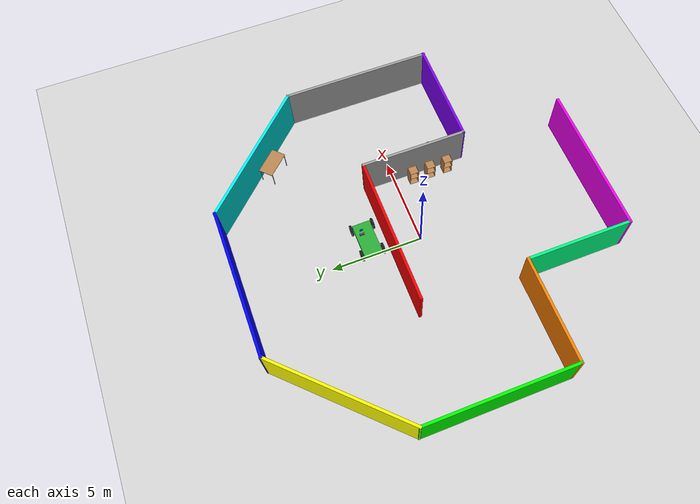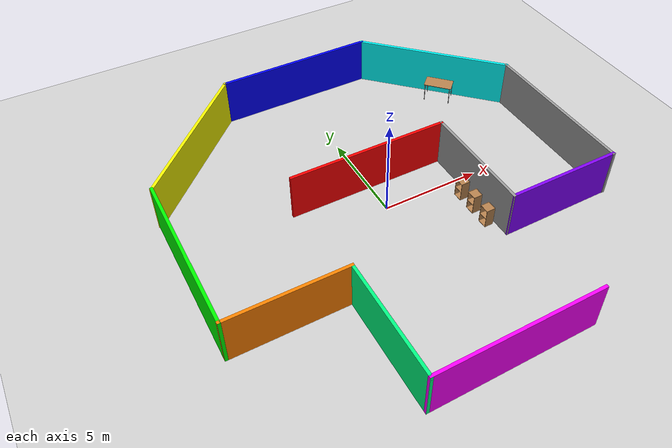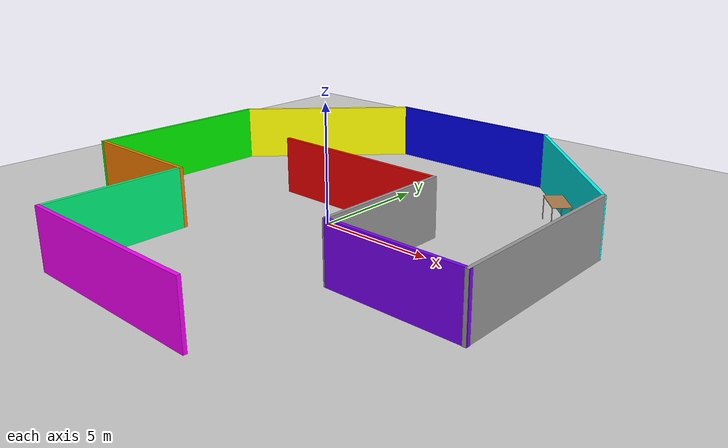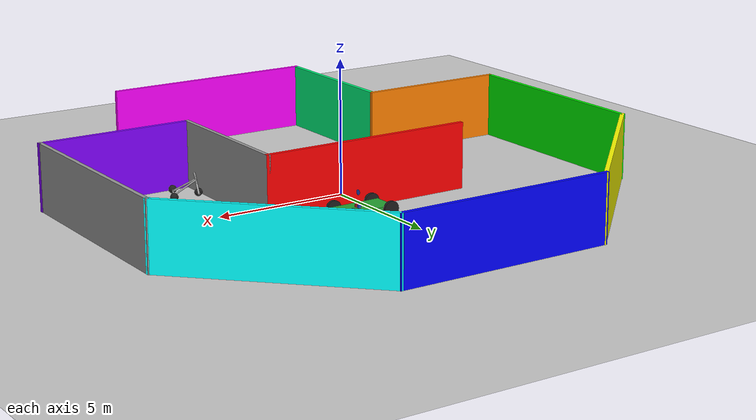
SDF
<sdf version="1.6">
 <world name="default">
  <model name="ground_plane">
   <static>1</static>
   <link name="link">
    <collision name="collision">
     <geometry><plane><normal>0 0 1</normal><size>100 100</size></plane></geometry>
     <surface><friction><ode><mu>100</mu><mu2>50</mu2></ode></friction></surface>
    </collision>
    <visual name="visual">
     <cast_shadows>0</cast_shadows>
     <geometry><plane><normal>0 0 1</normal><size>100 100</size></plane></geometry>
     <material>
      <script><uri>file://media/materials/scripts/gazebo.material</uri><name>Gazebo/Grey</name></script>
     </material>
    </visual>
   </link>
  </model>
  <model name="localize_room">
   <link name="Wall_15">
    <collision name="Wall_15_Collision">
     <geometry><box><size>8.284 0.15 2.5</size></box></geometry>
     <pose>0 0 1.25 0 -0 0</pose>
    </collision>
    <visual name="Wall_15_Visual">
     <pose>0 0 1.25 0 -0 0</pose>
     <geometry><box><size>8.284 0.15 2.5</size></box></geometry>
     <material>
      <script><uri>file://media/materials/scripts/gazebo.material</uri><name>Gazebo/Grey</name></script>
      <ambient>0.0 0.0 0.0 1</ambient>
     </material>
     <meta><layer>0</layer></meta>
    </visual>
    <pose>9.775 -0.015533 0 0 -0 1.5708</pose>
   </link>
   <link name="Wall_21">
    <collision name="Wall_21_Collision">
     <geometry><box><size>8.25 0.15 2.5</size></box></geometry>
     <pose>0 0 1.25 0 -0 0</pose>
    </collision>
    <visual name="Wall_21_Visual">
     <pose>0 0 1.25 0 -0 0</pose>
     <geometry><box><size>8.25 0.15 2.5</size></box></geometry>
     <material>
      <script><uri>file://media/materials/scripts/gazebo.material</uri><name>Gazebo/Grey</name></script>
      <ambient>0.0 1.0 0.0 1</ambient>
     </material>
     <meta><layer>0</layer></meta>
    </visual>
    <pose>-9.775 0.001467 0 0 -0 1.5708</pose>
   </link>
   <link name="Wall_27">
    <collision name="Wall_27_Collision">
     <geometry><box><size>8.284 0.15 2.5</size></box></geometry>
     <pose>0 0 1.25 0 -0 0</pose>
    </collision>
    <visual name="Wall_27_Visual">
     <pose>0 0 1.25 0 -0 0</pose>
     <geometry><box><size>8.284 0.15 2.5</size></box></geometry>
     <material>
      <script><uri>file://media/materials/scripts/gazebo.material</uri><name>Gazebo/Grey</name></script>
      <ambient>0.0 0.0 1.0 1</ambient>
     </material>
     <meta><layer>0</layer></meta>
    </visual>
    <pose>0 9.75947 0 0 -0 0</pose>
   </link>
   <link name="Wall_33">
    <collision name="Wall_33_Collision">
     <geometry><box><size>8.22233 0.15 2.5</size></box></geometry>
     <pose>0 0 1.25 0 -0 0</pose>
    </collision>
    <visual name="Wall_33_Visual">
     <pose>0 0 1.25 0 -0 0</pose>
     <geometry><box><size>8.22233 0.15 2.5</size></box></geometry>
     <material>
      <script><uri>file://media/materials/scripts/gazebo.material</uri><name>Gazebo/Grey</name></script>
      <ambient>1.0 1.0 0.0 1</ambient>
     </material>
     <meta><layer>0</layer></meta>
    </visual>
    <pose>-6.921 6.90547 0 0 0 -2.35619</pose>
   </link>
   <link name="Wall_35">
    <collision name="Wall_35_Collision">
     <geometry><box><size>8.22233 0.15 2.5</size></box></geometry>
     <pose>0 0 1.25 0 -0 0</pose>
    </collision>
    <visual name="Wall_35_Visual">
     <pose>0 0 1.25 0 -0 0</pose>
     <geometry><box><size>8.22233 0.15 2.5</size></box></geometry>
     <material>
      <script><uri>file://media/materials/scripts/gazebo.material</uri><name>Gazebo/Grey</name></script>
      <ambient>0.0 1.0 1.0 1</ambient>
     </material>
     <meta><layer>0</layer></meta>
    </visual>
    <pose>6.921 6.90547 0 0 0 -0.785398</pose>
   </link>
   <link name="Wall_4">
    <collision name="Wall_4_Collision">
     <geometry><box><size>8.284 0.15 2.5</size></box></geometry>
     <pose>0 0 1.25 0 -0 0</pose>
    </collision>
    <visual name="Wall_4_Visual">
     <pose>0 0 1.25 0 -0 0</pose>
     <geometry><box><size>8.284 0.15 2.5</size></box></geometry>
     <material>
      <script><uri>file://media/materials/scripts/gazebo.material</uri><name>Gazebo/Grey</name></script>
      <ambient>1.0 0.0 1.0 1</ambient>
     </material>
     <meta><layer>0</layer></meta>
    </visual>
    <pose>0 -9.79053 0 0 -0 0</pose>
   </link>
   <link name="Wall_56">
    <collision name="Wall_56_Collision">
     <geometry><box><size>5.858 0.15 2.5</size></box></geometry>
     <pose>0 0 1.25 0 -0 0</pose>
    </collision>
    <visual name="Wall_56_Visual">
     <pose>0 0 1.25 0 -0 0</pose>
     <geometry><box><size>5.858 0.15 2.5</size></box></geometry>
     <material>
      <script><uri>file://media/materials/scripts/gazebo.material</uri><name>Gazebo/Grey</name></script>
      <ambient>1.0 0.50196 0.0 1</ambient>
     </material>
     <meta><layer>0</layer></meta>
    </visual>
    <pose>-6.921 -4.04853 0 0 -0 0</pose>
   </link>
   <link name="Wall_58">
    <collision name="Wall_58_Collision">
     <geometry><box><size>5.75 0.15 2.5</size></box></geometry>
     <pose>0 0 1.25 0 -0 0</pose>
    </collision>
    <visual name="Wall_58_Visual">
     <pose>0 0 1.25 0 -0 0</pose>
     <geometry><box><size>5.75 0.15 2.5</size></box></geometry>
     <material>
      <script><uri>file://media/materials/scripts/gazebo.material</uri><name>Gazebo/Grey</name></script>
      <ambient>0.0 1.0 0.50196 1</ambient>
     </material>
     <meta><layer>0</layer></meta>
    </visual>
    <pose>-4.067 -6.99053 0 0 -0 1.5708</pose>
   </link>
   <link name="Wall_60">
    <collision name="Wall_60_Collision">
     <geometry><box><size>5.90863 0.15 2.5</size></box></geometry>
     <pose>0 0 1.25 0 -0 0</pose>
    </collision>
    <visual name="Wall_60_Visual">
     <pose>0 0 1.25 0 -0 0</pose>
     <geometry><box><size>5.90863 0.15 2.5</size></box></geometry>
     <material>
      <script><uri>file://media/materials/scripts/gazebo.material</uri><name>Gazebo/Grey</name></script>
      <ambient>0.50196 0.0 1.0 1</ambient>
     </material>
     <meta><layer>0</layer></meta>
    </visual>
    <pose>6.91525 -4.06048 0 0 0 -0.000864</pose>
   </link>
   <link name="Wall_63">
    <collision name="Wall_63_Collision">
     <geometry><box><size>8.25 0.15 2.5</size></box></geometry>
     <pose>0 0 1.25 0 -0 0</pose>
    </collision>
    <visual name="Wall_63_Visual">
     <pose>0 0 1.25 0 -0 0</pose>
     <geometry><box><size>8.25 0.15 2.5</size></box></geometry>
     <material>
      <script><uri>file://media/materials/scripts/gazebo.material</uri><name>Gazebo/Grey</name></script>
      <ambient>1.0 0.0 0.0 1</ambient>
     </material>
     <meta><layer>0</layer></meta>
    </visual>
    <pose>-0.014065 1.69201 0 0 -0 0</pose>
   </link>
   <link name="Wall_64">
    <collision name="Wall_64_Collision">
     <geometry><box><size>5.9 0.15 2.5</size></box></geometry>
     <pose>0 0 1.25 0 -0 0</pose>
    </collision>
    <visual name="Wall_64_Visual">
     <pose>0 0 1.25 0 -0 0</pose>
     <geometry><box><size>5.9 0.15 2.5</size></box></geometry>
     <material>
      <script><uri>file://media/materials/scripts/gazebo.material</uri><name>Gazebo/Grey</name></script>
      <ambient>1.0 1.0 1.0 1</ambient>
     </material>
     <meta><layer>0</layer></meta>
    </visual>
    <pose>4.03594 -1.18299 0 0 0 -1.5708</pose>
   </link>
   <static>1</static>
  </model>
  <model name="cabinet">
   <static>1</static>
   <link name="cabinet_bottom_plate">
    <inertial>
     <pose>0 0 -1 0 -0 0</pose>
     <inertia><ixx>2.05</ixx><ixy>0</ixy><ixz>0</ixz><iyy>2.05</iyy><iyz>0</iyz><izz>2.05</izz></inertia>
     <mass>25</mass>
    </inertial>
    <collision name="cabinet_bottom_plate_geom">
     <pose>0 0 0.01 0 -0 0</pose>
     <geometry><box><size>0.45 0.45 0.02</size></box></geometry>
    </collision>
    <visual name="cabinet_bottom_plate_geom_visual">
     <pose>0 0 0.01 0 -0 0</pose>
     <geometry><box><size>0.45 0.45 0.02</size></box></geometry>
     <material>
      <script><uri>file://media/materials/scripts/gazebo.material</uri><name>Gazebo/Wood</name></script>
     </material>
    </visual>
    <collision name="cabinet_bottom_plate_geom_cabinet_back_plate">
     <pose>0.235 0 0.51 0 -0 0</pose>
     <geometry><box><size>0.02 0.45 1.02</size></box></geometry>
    </collision>
    <visual name="cabinet_bottom_plate_geom_cabinet_back_plate_visual">
     <pose>0.235 0 0.51 0 -0 0</pose>
     <geometry><box><size>0.02 0.45 1.02</size></box></geometry>
     <material>
      <script><uri>file://media/materials/scripts/gazebo.material</uri><name>Gazebo/Wood</name></script>
     </material>
    </visual>
    <collision name="cabinet_bottom_plate_geom_cabinet_left_plate">
     <pose>0 0.235 0.51 0 -0 0</pose>
     <geometry><box><size>0.45 0.02 1.02</size></box></geometry>
    </collision>
    <visual name="cabinet_bottom_plate_geom_cabinet_left_plate_visual">
     <pose>0 0.235 0.51 0 -0 0</pose>
     <geometry><box><size>0.45 0.02 1.02</size></box></geometry>
     <material>
      <script><uri>file://media/materials/scripts/gazebo.material</uri><name>Gazebo/Wood</name></script>
     </material>
    </visual>
    <collision name="cabinet_bottom_plate_geom_cabinet_middle_plate">
     <pose>0 0 0.51 0 -0 0</pose>
     <geometry><box><size>0.45 0.45 0.02</size></box></geometry>
    </collision>
    <visual name="cabinet_bottom_plate_geom_cabinet_middle_plate_visual">
     <pose>0 0 0.51 0 -0 0</pose>
     <geometry><box><size>0.45 0.45 0.02</size></box></geometry>
     <material>
      <script><uri>file://media/materials/scripts/gazebo.material</uri><name>Gazebo/Wood</name></script>
     </material>
    </visual>
    <collision name="cabinet_bottom_plate_geom_cabinet_right_plate">
     <pose>0 -0.235 0.51 0 -0 0</pose>
     <geometry><box><size>0.45 0.02 1.02</size></box></geometry>
    </collision>
    <visual name="cabinet_bottom_plate_geom_cabinet_right_plate_visual">
     <pose>0 -0.235 0.51 0 -0 0</pose>
     <geometry><box><size>0.45 0.02 1.02</size></box></geometry>
     <material>
      <script><uri>file://media/materials/scripts/gazebo.material</uri><name>Gazebo/Wood</name></script>
     </material>
    </visual>
    <collision name="cabinet_bottom_plate_geom_cabinet_top_plate">
     <pose>0 0 1.01 0 -0 0</pose>
     <geometry><box><size>0.45 0.45 0.02</size></box></geometry>
    </collision>
    <visual name="cabinet_bottom_plate_geom_cabinet_top_plate_visual">
     <pose>0 0 1.01 0 -0 0</pose>
     <geometry><box><size>0.45 0.45 0.02</size></box></geometry>
     <material>
      <script><uri>file://media/materials/scripts/gazebo.material</uri><name>Gazebo/Wood</name></script>
     </material>
    </visual>
   </link>
   <pose>3.6 -3 0 0 -0 0</pose>
  </model>
  <model name="cabinet_0">
   <static>1</static>
   <link name="cabinet_bottom_plate">
    <inertial>
     <pose>0 0 -1 0 -0 0</pose>
     <inertia><ixx>2.05</ixx><ixy>0</ixy><ixz>0</ixz><iyy>2.05</iyy><iyz>0</iyz><izz>2.05</izz></inertia>
     <mass>25</mass>
    </inertial>
    <collision name="cabinet_bottom_plate_geom">
     <pose>0 0 0.01 0 -0 0</pose>
     <geometry><box><size>0.45 0.45 0.02</size></box></geometry>
    </collision>
    <visual name="cabinet_bottom_plate_geom_visual">
     <pose>0 0 0.01 0 -0 0</pose>
     <geometry><box><size>0.45 0.45 0.02</size></box></geometry>
     <material>
      <script><uri>file://media/materials/scripts/gazebo.material</uri><name>Gazebo/Wood</name></script>
     </material>
    </visual>
    <collision name="cabinet_bottom_plate_geom_cabinet_back_plate">
     <pose>0.235 0 0.51 0 -0 0</pose>
     <geometry><box><size>0.02 0.45 1.02</size></box></geometry>
    </collision>
    <visual name="cabinet_bottom_plate_geom_cabinet_back_plate_visual">
     <pose>0.235 0 0.51 0 -0 0</pose>
     <geometry><box><size>0.02 0.45 1.02</size></box></geometry>
     <material>
      <script><uri>file://media/materials/scripts/gazebo.material</uri><name>Gazebo/Wood</name></script>
     </material>
    </visual>
    <collision name="cabinet_bottom_plate_geom_cabinet_left_plate">
     <pose>0 0.235 0.51 0 -0 0</pose>
     <geometry><box><size>0.45 0.02 1.02</size></box></geometry>
    </collision>
    <visual name="cabinet_bottom_plate_geom_cabinet_left_plate_visual">
     <pose>0 0.235 0.51 0 -0 0</pose>
     <geometry><box><size>0.45 0.02 1.02</size></box></geometry>
     <material>
      <script><uri>file://media/materials/scripts/gazebo.material</uri><name>Gazebo/Wood</name></script>
     </material>
    </visual>
    <collision name="cabinet_bottom_plate_geom_cabinet_middle_plate">
     <pose>0 0 0.51 0 -0 0</pose>
     <geometry><box><size>0.45 0.45 0.02</size></box></geometry>
    </collision>
    <visual name="cabinet_bottom_plate_geom_cabinet_middle_plate_visual">
     <pose>0 0 0.51 0 -0 0</pose>
     <geometry><box><size>0.45 0.45 0.02</size></box></geometry>
     <material>
      <script><uri>file://media/materials/scripts/gazebo.material</uri><name>Gazebo/Wood</name></script>
     </material>
    </visual>
    <collision name="cabinet_bottom_plate_geom_cabinet_right_plate">
     <pose>0 -0.235 0.51 0 -0 0</pose>
     <geometry><box><size>0.45 0.02 1.02</size></box></geometry>
    </collision>
    <visual name="cabinet_bottom_plate_geom_cabinet_right_plate_visual">
     <pose>0 -0.235 0.51 0 -0 0</pose>
     <geometry><box><size>0.45 0.02 1.02</size></box></geometry>
     <material>
      <script><uri>file://media/materials/scripts/gazebo.material</uri><name>Gazebo/Wood</name></script>
     </material>
    </visual>
    <collision name="cabinet_bottom_plate_geom_cabinet_top_plate">
     <pose>0 0 1.01 0 -0 0</pose>
     <geometry><box><size>0.45 0.45 0.02</size></box></geometry>
    </collision>
    <visual name="cabinet_bottom_plate_geom_cabinet_top_plate_visual">
     <pose>0 0 1.01 0 -0 0</pose>
     <geometry><box><size>0.45 0.45 0.02</size></box></geometry>
     <material>
      <script><uri>file://media/materials/scripts/gazebo.material</uri><name>Gazebo/Wood</name></script>
     </material>
    </visual>
   </link>
   <pose>3.6 -2 0 0 -0 0</pose>
  </model>
  <model name="cabinet_1">
   <static>1</static>
   <link name="cabinet_bottom_plate">
    <inertial>
     <pose>0 0 -1 0 -0 0</pose>
     <inertia><ixx>2.05</ixx><ixy>0</ixy><ixz>0</ixz><iyy>2.05</iyy><iyz>0</iyz><izz>2.05</izz></inertia>
     <mass>25</mass>
    </inertial>
    <collision name="cabinet_bottom_plate_geom">
     <pose>0 0 0.01 0 -0 0</pose>
     <geometry><box><size>0.45 0.45 0.02</size></box></geometry>
    </collision>
    <visual name="cabinet_bottom_plate_geom_visual">
     <pose>0 0 0.01 0 -0 0</pose>
     <geometry><box><size>0.45 0.45 0.02</size></box></geometry>
     <material>
      <script><uri>file://media/materials/scripts/gazebo.material</uri><name>Gazebo/Wood</name></script>
     </material>
    </visual>
    <collision name="cabinet_bottom_plate_geom_cabinet_back_plate">
     <pose>0.235 0 0.51 0 -0 0</pose>
     <geometry><box><size>0.02 0.45 1.02</size></box></geometry>
    </collision>
    <visual name="cabinet_bottom_plate_geom_cabinet_back_plate_visual">
     <pose>0.235 0 0.51 0 -0 0</pose>
     <geometry><box><size>0.02 0.45 1.02</size></box></geometry>
     <material>
      <script><uri>file://media/materials/scripts/gazebo.material</uri><name>Gazebo/Wood</name></script>
     </material>
    </visual>
    <collision name="cabinet_bottom_plate_geom_cabinet_left_plate">
     <pose>0 0.235 0.51 0 -0 0</pose>
     <geometry><box><size>0.45 0.02 1.02</size></box></geometry>
    </collision>
    <visual name="cabinet_bottom_plate_geom_cabinet_left_plate_visual">
     <pose>0 0.235 0.51 0 -0 0</pose>
     <geometry><box><size>0.45 0.02 1.02</size></box></geometry>
     <material>
      <script><uri>file://media/materials/scripts/gazebo.material</uri><name>Gazebo/Wood</name></script>
     </material>
    </visual>
    <collision name="cabinet_bottom_plate_geom_cabinet_middle_plate">
     <pose>0 0 0.51 0 -0 0</pose>
     <geometry><box><size>0.45 0.45 0.02</size></box></geometry>
    </collision>
    <visual name="cabinet_bottom_plate_geom_cabinet_middle_plate_visual">
     <pose>0 0 0.51 0 -0 0</pose>
     <geometry><box><size>0.45 0.45 0.02</size></box></geometry>
     <material>
      <script><uri>file://media/materials/scripts/gazebo.material</uri><name>Gazebo/Wood</name></script>
     </material>
    </visual>
    <collision name="cabinet_bottom_plate_geom_cabinet_right_plate">
     <pose>0 -0.235 0.51 0 -0 0</pose>
     <geometry><box><size>0.45 0.02 1.02</size></box></geometry>
    </collision>
    <visual name="cabinet_bottom_plate_geom_cabinet_right_plate_visual">
     <pose>0 -0.235 0.51 0 -0 0</pose>
     <geometry><box><size>0.45 0.02 1.02</size></box></geometry>
     <material>
      <script><uri>file://media/materials/scripts/gazebo.material</uri><name>Gazebo/Wood</name></script>
     </material>
    </visual>
    <collision name="cabinet_bottom_plate_geom_cabinet_top_plate">
     <pose>0 0 1.01 0 -0 0</pose>
     <geometry><box><size>0.45 0.45 0.02</size></box></geometry>
    </collision>
    <visual name="cabinet_bottom_plate_geom_cabinet_top_plate_visual">
     <pose>0 0 1.01 0 -0 0</pose>
     <geometry><box><size>0.45 0.45 0.02</size></box></geometry>
     <material>
      <script><uri>file://media/materials/scripts/gazebo.material</uri><name>Gazebo/Wood</name></script>
     </material>
    </visual>
   </link>
   <pose>3.6 -1 0 0 -0 0</pose>
  </model>
  <model name="table">
   <static>1</static>
   <link name="link">
    <collision name="surface">
     <pose>0 0 1 0 -0 0</pose>
     <geometry><box><size>1.5 0.8 0.03</size></box></geometry>
     <surface><friction><ode><mu>0.6</mu><mu2>0.6</mu2></ode></friction></surface>
    </collision>
    <visual name="visual1">
     <pose>0 0 1 0 -0 0</pose>
     <geometry><box><size>1.5 0.8 0.03</size></box></geometry>
     <material>
      <script><uri>file://media/materials/scripts/gazebo.material</uri><name>Gazebo/Wood</name></script>
     </material>
    </visual>
    <collision name="front_left_leg">
     <pose>0.68 0.38 0.5 0 -0 0</pose>
     <geometry><cylinder><radius>0.02</radius><length>1</length></cylinder></geometry>
    </collision>
    <visual name="front_left_leg">
     <pose>0.68 0.38 0.5 0 -0 0</pose>
     <geometry><cylinder><radius>0.02</radius><length>1</length></cylinder></geometry>
     <material>
      <script><uri>file://media/materials/scripts/gazebo.material</uri><name>Gazebo/Grey</name></script>
     </material>
    </visual>
    <collision name="front_right_leg">
     <pose>0.68 -0.38 0.5 0 -0 0</pose>
     <geometry><cylinder><radius>0.02</radius><length>1</length></cylinder></geometry>
    </collision>
    <visual name="front_right_leg">
     <pose>0.68 -0.38 0.5 0 -0 0</pose>
     <geometry><cylinder><radius>0.02</radius><length>1</length></cylinder></geometry>
     <material>
      <script><uri>file://media/materials/scripts/gazebo.material</uri><name>Gazebo/Grey</name></script>
     </material>
    </visual>
    <collision name="back_right_leg">
     <pose>-0.68 -0.38 0.5 0 -0 0</pose>
     <geometry><cylinder><radius>0.02</radius><length>1</length></cylinder></geometry>
    </collision>
    <visual name="back_right_leg">
     <pose>-0.68 -0.38 0.5 0 -0 0</pose>
     <geometry><cylinder><radius>0.02</radius><length>1</length></cylinder></geometry>
     <material>
      <script><uri>file://media/materials/scripts/gazebo.material</uri><name>Gazebo/Grey</name></script>
     </material>
    </visual>
    <collision name="back_left_leg">
     <pose>-0.68 0.38 0.5 0 -0 0</pose>
     <geometry><cylinder><radius>0.02</radius><length>1</length></cylinder></geometry>
    </collision>
    <visual name="back_left_leg">
     <pose>-0.68 0.38 0.5 0 -0 0</pose>
     <geometry><cylinder><radius>0.02</radius><length>1</length></cylinder></geometry>
     <material>
      <script><uri>file://media/materials/scripts/gazebo.material</uri><name>Gazebo/Grey</name></script>
     </material>
    </visual>
   </link>
   <pose>6.91018 6.07308 0 0 0 -0.801836</pose>
  </model>
  <model name="trisphere_cycle">
   <link name="frame">
    <pose>-0.408559 0 0.385023 0 -0.522021 0</pose>
    <inertial>
     <mass>10</mass>
     <inertia><ixx>0.228</ixx><iyy>0.743521</iyy><izz>0.965521</izz><ixy>0</ixy><ixz>0</ixz><iyz>0</iyz></inertia>
    </inertial>
    <collision name="axle_collision">
     <pose>-0.471335 0 0 1.5708 -0 0</pose>
     <geometry><cylinder><length>1.03923</length><radius>0.03</radius></cylinder></geometry>
    </collision>
    <visual name="axle_visual">
     <pose>-0.471335 0 0 1.5708 -0 0</pose>
     <geometry><cylinder><length>1.03923</length><radius>0.03</radius></cylinder></geometry>
     <material>
      <script><uri>file://media/materials/scripts/gazebo.material</uri><name>Gazebo/Grey</name></script>
     </material>
    </visual>
    <collision name="frame_left_collision">
     <pose>0 0.171552 0 2.986 1.57079 2.76675</pose>
     <geometry><cylinder><length>1.00317</length><radius>0.03</radius></cylinder></geometry>
    </collision>
    <visual name="frame_left_visual">
     <pose>0 0.171552 0 2.986 1.57079 2.76675</pose>
     <geometry><cylinder><length>1.00317</length><radius>0.03</radius></cylinder></geometry>
     <material>
      <script><uri>file://media/materials/scripts/gazebo.material</uri><name>Gazebo/Grey</name></script>
     </material>
    </visual>
    <collision name="frame_right_collision">
     <pose>0 -0.171552 0 -2.986 1.57079 -2.76675</pose>
     <geometry><cylinder><length>1.00317</length><radius>0.03</radius></cylinder></geometry>
    </collision>
    <visual name="frame_right_visual">
     <pose>0 -0.171552 0 -2.986 1.57079 -2.76675</pose>
     <geometry><cylinder><length>1.00317</length><radius>0.03</radius></cylinder></geometry>
     <material>
      <script><uri>file://media/materials/scripts/gazebo.material</uri><name>Gazebo/Grey</name></script>
     </material>
    </visual>
   </link>
   <link name="fork">
    <pose>0.041441 0 0.385023 0 -0.174533 0</pose>
    <inertial>
     <mass>3</mass>
     <inertia>
      <ixx>0.158203</ixx>
      <iyy>0.0583594</iyy>
      <izz>0.102656</izz>
      <ixy>0</ixy>
      <ixz>0</ixz>
      <iyz>0</iyz>
     </inertia>
    </inertial>
    <collision name="handlebars_collision">
     <pose>0 0 0.397748 1.5708 -0 0</pose>
     <geometry><cylinder><length>0.636396</length><radius>0.0375</radius></cylinder></geometry>
    </collision>
    <visual name="handlebars_visual">
     <pose>0 0 0.397748 1.5708 -0 0</pose>
     <geometry><cylinder><length>0.636396</length><radius>0.0375</radius></cylinder></geometry>
     <material>
      <script><uri>file://media/materials/scripts/gazebo.material</uri><name>Gazebo/Grey</name></script>
     </material>
    </visual>
    <collision name="headtube_collision">
     <pose>0 0 0.238649 0 -0 0</pose>
     <geometry><cylinder><length>0.318198</length><radius>0.0375</radius></cylinder></geometry>
    </collision>
    <visual name="headtube_visual">
     <pose>0 0 0.238649 0 -0 0</pose>
     <geometry><cylinder><length>0.318198</length><radius>0.0375</radius></cylinder></geometry>
     <material>
      <script><uri>file://media/materials/scripts/gazebo.material</uri><name>Gazebo/Grey</name></script>
     </material>
    </visual>
    <collision name="spindle_collision">
     <pose>0 0 -0.238649 1.5708 -0 0</pose>
     <geometry><cylinder><length>0.636396</length><radius>0.015</radius></cylinder></geometry>
    </collision>
    <visual name="spindle_visual">
     <pose>0 0 -0.238649 1.5708 -0 0</pose>
     <geometry><cylinder><length>0.636396</length><radius>0.015</radius></cylinder></geometry>
     <material>
      <script><uri>file://media/materials/scripts/gazebo.material</uri><name>Gazebo/Grey</name></script>
     </material>
    </visual>
    <collision name="fork_left_collision">
     <pose>0 0.159099 -0.07955 0.785398 -0 0</pose>
     <geometry><cylinder><length>0.45</length><radius>0.0375</radius></cylinder></geometry>
    </collision>
    <visual name="fork_left_visual">
     <pose>0 0.159099 -0.07955 0.785398 -0 0</pose>
     <geometry><cylinder><length>0.45</length><radius>0.0375</radius></cylinder></geometry>
     <material>
      <script><uri>file://media/materials/scripts/gazebo.material</uri><name>Gazebo/Grey</name></script>
     </material>
    </visual>
    <collision name="fork_right_collision">
     <pose>0 -0.159099 -0.07955 -0.785398 0 0</pose>
     <geometry><cylinder><length>0.45</length><radius>0.0375</radius></cylinder></geometry>
    </collision>
    <visual name="fork_right_visual">
     <pose>0 -0.159099 -0.07955 -0.785398 0 0</pose>
     <geometry><cylinder><length>0.45</length><radius>0.0375</radius></cylinder></geometry>
     <material>
      <script><uri>file://media/materials/scripts/gazebo.material</uri><name>Gazebo/Grey</name></script>
     </material>
    </visual>
   </link>
   <link name="wheel_front">
    <pose>0.082882 0 0.15 0 -0 0</pose>
    <inertial>
     <mass>0.5</mass>
     <inertia><ixx>0.0045</ixx><iyy>0.0045</iyy><izz>0.0045</izz><ixy>0</ixy><ixz>0</ixz><iyz>0</iyz></inertia>
    </inertial>
    <collision name="collision">
     <geometry><sphere><radius>0.15</radius></sphere></geometry>
     <surface><contact><ode><kp>1e+08</kp><kd>1</kd><min_depth>0.0005</min_depth></ode></contact></surface>
    </collision>
    <visual name="visual">
     <geometry><sphere><radius>0.15</radius></sphere></geometry>
     <material>
      <script><uri>file://media/materials/scripts/gazebo.material</uri><name>Gazebo/Black</name></script>
     </material>
    </visual>
   </link>
   <joint name="wheel_front_steer" type="revolute">
    <parent>frame</parent>
    <child>fork</child>
    <axis>
     <xyz>0 0 1</xyz>
     <limit><lower>-0.959931</lower><upper>0.959931</upper></limit>
     <use_parent_model_frame>0</use_parent_model_frame>
     <dynamics><spring_reference>0</spring_reference><spring_stiffness>0</spring_stiffness></dynamics>
    </axis>
   </joint>
   <joint name="wheel_front_spin" type="revolute">
    <parent>fork</parent>
    <child>wheel_front</child>
    <axis>
     <xyz>0 1 0</xyz>
     <use_parent_model_frame>0</use_parent_model_frame>
     <limit><lower>-1e+16</lower><upper>1e+16</upper></limit>
     <dynamics><spring_reference>0</spring_reference><spring_stiffness>0</spring_stiffness></dynamics>
    </axis>
   </joint>
   <link name="wheel_rear_left">
    <pose>-0.817118 0.519615 0.15 0 -0 0</pose>
    <inertial>
     <mass>0.5</mass>
     <inertia><ixx>0.0045</ixx><iyy>0.0045</iyy><izz>0.0045</izz><ixy>0</ixy><ixz>0</ixz><iyz>0</iyz></inertia>
    </inertial>
    <collision name="collision">
     <geometry><sphere><radius>0.15</radius></sphere></geometry>
     <surface><contact><ode><kp>1e+08</kp><kd>1</kd><min_depth>0.0005</min_depth></ode></contact></surface>
    </collision>
    <visual name="visual">
     <geometry><sphere><radius>0.15</radius></sphere></geometry>
     <material>
      <script><uri>file://media/materials/scripts/gazebo.material</uri><name>Gazebo/Black</name></script>
     </material>
    </visual>
   </link>
   <joint name="wheel_rear_left_spin" type="revolute">
    <parent>frame</parent>
    <child>wheel_rear_left</child>
    <axis>
     <xyz>0 1 0</xyz>
     <use_parent_model_frame>0</use_parent_model_frame>
     <limit><lower>-1e+16</lower><upper>1e+16</upper></limit>
     <dynamics><spring_reference>0</spring_reference><spring_stiffness>0</spring_stiffness></dynamics>
    </axis>
   </joint>
   <link name="wheel_rear_right">
    <pose>-0.817118 -0.519615 0.15 0 -0 0</pose>
    <inertial>
     <mass>0.5</mass>
     <inertia><ixx>0.0045</ixx><iyy>0.0045</iyy><izz>0.0045</izz><ixy>0</ixy><ixz>0</ixz><iyz>0</iyz></inertia>
    </inertial>
    <collision name="collision">
     <geometry><sphere><radius>0.15</radius></sphere></geometry>
     <surface><contact><ode><kp>1e+08</kp><kd>1</kd><min_depth>0.0005</min_depth></ode></contact></surface>
    </collision>
    <visual name="visual">
     <geometry><sphere><radius>0.15</radius></sphere></geometry>
     <material>
      <script><uri>file://media/materials/scripts/gazebo.material</uri><name>Gazebo/Black</name></script>
     </material>
    </visual>
   </link>
   <joint name="wheel_rear_right_spin" type="revolute">
    <parent>frame</parent>
    <child>wheel_rear_right</child>
    <axis>
     <xyz>0 1 0</xyz>
     <use_parent_model_frame>0</use_parent_model_frame>
     <limit><lower>-1e+16</lower><upper>1e+16</upper></limit>
     <dynamics><spring_reference>0</spring_reference><spring_stiffness>0</spring_stiffness></dynamics>
    </axis>
   </joint>
   <pose>4.4301 -2.79774 -0.000501 -0 1e-06 2.72369</pose>
  </model>
  <model name="car">
   <link name="chassis">
    <pose>0 0 0.3 0 -0 0</pose>
    <collision name="collision"><geometry><box><size>2 1 0.2</size></box></geometry></collision>
    <visual name="visual">
     <geometry><box><size>2 1 0.2</size></box></geometry>
     <material>
      <script><uri>file://media/materials/scripts/gazebo.material</uri><name>Gazebo/Green</name></script>
     </material>
    </visual>
    <inertial>
     <inertia><ixx>1</ixx><ixy>0</ixy><ixz>0</ixz><iyy>1</iyy><iyz>0</iyz><izz>1</izz></inertia>
     <mass>1</mass>
    </inertial>
   </link>
   <link name="front_left_wheel">
    <pose>0.8 0.6 0.3 -0 1.5707 1.5707</pose>
    <collision name="collision">
     <geometry><cylinder><radius>0.3</radius><length>0.1</length></cylinder></geometry>
    </collision>
    <visual name="visual">
     <geometry><cylinder><radius>0.3</radius><length>0.1</length></cylinder></geometry>
     <material>
      <script><uri>file://media/materials/scripts/gazebo.material</uri><name>Gazebo/Black</name></script>
     </material>
    </visual>
    <inertial>
     <inertia><ixx>1</ixx><ixy>0</ixy><ixz>0</ixz><iyy>1</iyy><iyz>0</iyz><izz>1</izz></inertia>
     <mass>1</mass>
    </inertial>
   </link>
   <link name="front_right_wheel">
    <pose>0.8 -0.6 0.3 -0 1.5707 1.5707</pose>
    <collision name="collision">
     <geometry><cylinder><radius>0.3</radius><length>0.1</length></cylinder></geometry>
    </collision>
    <visual name="visual">
     <geometry><cylinder><radius>0.3</radius><length>0.1</length></cylinder></geometry>
     <material>
      <script><uri>file://media/materials/scripts/gazebo.material</uri><name>Gazebo/Black</name></script>
     </material>
    </visual>
    <inertial>
     <inertia><ixx>1</ixx><ixy>0</ixy><ixz>0</ixz><iyy>1</iyy><iyz>0</iyz><izz>1</izz></inertia>
     <mass>1</mass>
    </inertial>
   </link>
   <link name="back_right_wheel">
    <pose>-0.8 -0.6 0.3 -0 1.5707 1.5707</pose>
    <collision name="collision">
     <geometry><cylinder><radius>0.3</radius><length>0.1</length></cylinder></geometry>
    </collision>
    <visual name="visual">
     <geometry><cylinder><radius>0.3</radius><length>0.1</length></cylinder></geometry>
     <material>
      <script><uri>file://media/materials/scripts/gazebo.material</uri><name>Gazebo/Black</name></script>
     </material>
    </visual>
    <inertial>
     <inertia><ixx>1</ixx><ixy>0</ixy><ixz>0</ixz><iyy>1</iyy><iyz>0</iyz><izz>1</izz></inertia>
     <mass>1</mass>
    </inertial>
   </link>
   <link name="back_left_wheel">
    <pose>-0.8 0.6 0.3 -0 1.5707 1.5707</pose>
    <collision name="collision">
     <geometry><cylinder><radius>0.3</radius><length>0.1</length></cylinder></geometry>
    </collision>
    <visual name="visual">
     <geometry><cylinder><radius>0.3</radius><length>0.1</length></cylinder></geometry>
     <material>
      <script><uri>file://media/materials/scripts/gazebo.material</uri><name>Gazebo/Black</name></script>
     </material>
    </visual>
    <inertial>
     <inertia><ixx>1</ixx><ixy>0</ixy><ixz>0</ixz><iyy>1</iyy><iyz>0</iyz><izz>1</izz></inertia>
     <mass>1</mass>
    </inertial>
   </link>
   <link name="gas_pedal">
    <pose>0.3 0.1 0.5 0 -0 0</pose>
    <collision name="collision"><geometry><box><size>0.1 0.1 0.1</size></box></geometry></collision>
    <visual name="visual">
     <geometry><box><size>0.1 0.1 0.1</size></box></geometry>
     <material>
      <script><uri>file://media/materials/scripts/gazebo.material</uri><name>Gazebo/Red</name></script>
     </material>
    </visual>
    <inertial>
     <inertia><ixx>1</ixx><ixy>0</ixy><ixz>0</ixz><iyy>1</iyy><iyz>0</iyz><izz>1</izz></inertia>
     <mass>1</mass>
    </inertial>
   </link>
   <link name="brake_pedal">
    <pose>0.3 0.25 0.5 0 -0 0</pose>
    <collision name="collision"><geometry><box><size>0.1 0.1 0.1</size></box></geometry></collision>
    <visual name="visual">
     <geometry><box><size>0.1 0.1 0.1</size></box></geometry>
     <material>
      <script><uri>file://media/materials/scripts/gazebo.material</uri><name>Gazebo/Blue</name></script>
     </material>
    </visual>
    <inertial>
     <inertia><ixx>1</ixx><ixy>0</ixy><ixz>0</ixz><iyy>1</iyy><iyz>0</iyz><izz>1</izz></inertia>
     <mass>1</mass>
    </inertial>
   </link>
   <link name="steering_wheel">
    <pose>0.3 0.2 1 0 1.5707 0</pose>
    <collision name="collision">
     <geometry><cylinder><radius>0.1</radius><length>0.01</length></cylinder></geometry>
    </collision>
    <visual name="visual">
     <geometry><cylinder><radius>0.1</radius><length>0.01</length></cylinder></geometry>
     <material>
      <script><uri>file://media/materials/scripts/gazebo.material</uri><name>Gazebo/Blue</name></script>
     </material>
    </visual>
    <inertial>
     <inertia><ixx>1</ixx><ixy>0</ixy><ixz>0</ixz><iyy>1</iyy><iyz>0</iyz><izz>1</izz></inertia>
     <mass>1</mass>
    </inertial>
   </link>
   <joint name="gas_joint" type="prismatic">
    <parent>chassis</parent>
    <child>gas_pedal</child>
    <axis>
     <xyz>1 0 0</xyz>
     <limit><lower>0</lower><upper>0.2</upper></limit>
     <use_parent_model_frame>1</use_parent_model_frame>
     <dynamics><spring_reference>0</spring_reference><spring_stiffness>0</spring_stiffness></dynamics>
    </axis>
   </joint>
   <joint name="brake_joint" type="prismatic">
    <parent>chassis</parent>
    <child>brake_pedal</child>
    <axis>
     <xyz>1 0 0</xyz>
     <limit><lower>0</lower><upper>0.2</upper></limit>
     <use_parent_model_frame>1</use_parent_model_frame>
     <dynamics><spring_reference>0</spring_reference><spring_stiffness>0</spring_stiffness></dynamics>
    </axis>
   </joint>
   <joint name="steering_joint" type="revolute">
    <parent>chassis</parent>
    <child>steering_wheel</child>
    <axis>
     <xyz>1 0 0</xyz>
     <limit><lower>-7.853</lower><upper>7.853</upper></limit>
     <use_parent_model_frame>1</use_parent_model_frame>
     <dynamics><spring_reference>0</spring_reference><spring_stiffness>0</spring_stiffness></dynamics>
    </axis>
   </joint>
   <joint name="front_left_joint" type="revolute2">
    <parent>chassis</parent>
    <child>front_left_wheel</child>
    <axis>
     <xyz>0 0 1</xyz>
     <limit><lower>0.00194911</lower><upper>0.00194911</upper></limit>
     <use_parent_model_frame>1</use_parent_model_frame>
     <dynamics><spring_reference>0</spring_reference><spring_stiffness>0</spring_stiffness></dynamics>
    </axis>
    <axis2>
     <xyz>0 1 0</xyz>
     <use_parent_model_frame>1</use_parent_model_frame>
     <dynamics><spring_reference>0</spring_reference><spring_stiffness>0</spring_stiffness></dynamics>
    </axis2>
    <physics><ode><limit><cfm>0</cfm><erp>0.9</erp></limit></ode></physics>
   </joint>
   <joint name="front_right_joint" type="revolute2">
    <parent>chassis</parent>
    <child>front_right_wheel</child>
    <axis>
     <xyz>0 0 1</xyz>
     <limit><lower>0.00194911</lower><upper>0.00194911</upper></limit>
     <use_parent_model_frame>1</use_parent_model_frame>
     <dynamics><spring_reference>0</spring_reference><spring_stiffness>0</spring_stiffness></dynamics>
    </axis>
    <axis2>
     <xyz>0 1 0</xyz>
     <use_parent_model_frame>1</use_parent_model_frame>
     <dynamics><spring_reference>0</spring_reference><spring_stiffness>0</spring_stiffness></dynamics>
    </axis2>
    <physics><ode><limit><cfm>0</cfm><erp>0.9</erp></limit></ode></physics>
   </joint>
   <joint name="back_right_joint" type="revolute2">
    <parent>chassis</parent>
    <child>back_right_wheel</child>
    <axis>
     <xyz>0 0 1</xyz>
     <limit><lower>0</lower><upper>0</upper></limit>
     <use_parent_model_frame>1</use_parent_model_frame>
     <dynamics><spring_reference>0</spring_reference><spring_stiffness>0</spring_stiffness></dynamics>
    </axis>
    <axis2>
     <xyz>0 1 0</xyz>
     <use_parent_model_frame>1</use_parent_model_frame>
     <dynamics><spring_reference>0</spring_reference><spring_stiffness>0</spring_stiffness></dynamics>
    </axis2>
    <physics><ode><limit><cfm>0</cfm><erp>0.9</erp></limit></ode></physics>
   </joint>
   <joint name="back_left_joint" type="revolute2">
    <parent>chassis</parent>
    <child>back_left_wheel</child>
    <axis>
     <xyz>0 0 1</xyz>
     <limit><lower>0</lower><upper>0</upper></limit>
     <use_parent_model_frame>1</use_parent_model_frame>
     <dynamics><spring_reference>0</spring_reference><spring_stiffness>0</spring_stiffness></dynamics>
    </axis>
    <axis2>
     <xyz>0 1 0</xyz>
     <use_parent_model_frame>1</use_parent_model_frame>
     <dynamics><spring_reference>0</spring_reference><spring_stiffness>0</spring_stiffness></dynamics>
    </axis2>
    <physics><ode><limit><cfm>0</cfm><erp>0.9</erp></limit></ode></physics>
   </joint>
   <plugin name="vehicle" filename="libVehiclePlugin.so">
    <front_left>front_left_joint</front_left>
    <front_right>front_right_joint</front_right>
    <back_left>back_left_joint</back_left>
    <back_right>back_right_joint</back_right>
    <gas>gas_joint</gas>
    <brake>brake_joint</brake>
    <steering>steering_joint</steering>
    <front_power>10</front_power>
    <rear_power>10</rear_power>
    <tire_angle_range>0.5</tire_angle_range>
    <max_speed>10</max_speed>
    <aero_load>0.1</aero_load>
   </plugin>
   <pose>0.880883 2.72898 -0.002614 -0.000273 0.000907 0.013323</pose>
  </model>
 </world>
</sdf>
